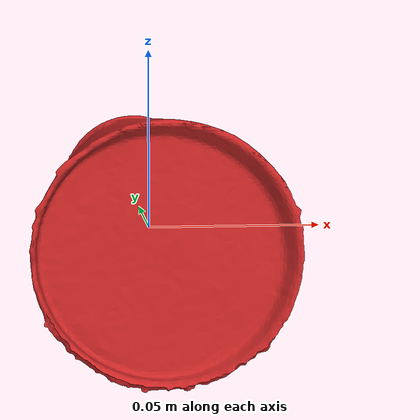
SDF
<?xml version='1.0'?>
<sdf version="1.4">
  <model name="PowderedSugarMill">
    <static>false</static>
    <link name="link">
      <inertial>
        <pose>0.00204149840624539 0.059539781375831886 -0.0003878793526017699 1.5575197246590546 0.05138434034944516 3.1414615027312456</pose>
        <mass>0.06516295915697615</mass>
        <inertia>
          <ixx>0.00021897417673035497</ixx>
          <ixy>-2.251299131001115e-21</ixy>
          <ixz>1.1235634989841531e-21</ixz>
          <iyy>0.00021877389247868168</iyy>
          <iyz>-9.92095415346767e-21</iyz>
          <izz>3.503095095791792e-05</izz>
        </inertia>
      </inertial>
      <collision name="collision">
        <geometry>
          <mesh>
            <!-- Use a downsampled mesh for collisions -->
            <uri>model:///PowderedSugarMill/PowderedSugarMill_250_collision.obj</uri>
	        </mesh>
        </geometry>
        <surface>
      </surface>
      </collision>
      <visual name="visual">
        <geometry>
          <mesh>
            <uri>model:///PowderedSugarMill/PowderedSugarMill_25k_tex.obj</uri>
	        </mesh>
        </geometry>
        <material>
          <script>
            <uri>model:///PowderedSugarMill/PowderedSugarMill.material</uri>
            <name>PowderedSugarMill</name>
          </script>
        </material>
      </visual>
    </link>
  </model>
</sdf>
